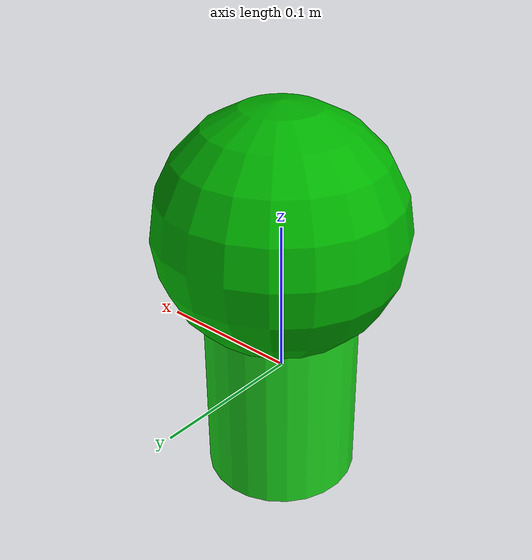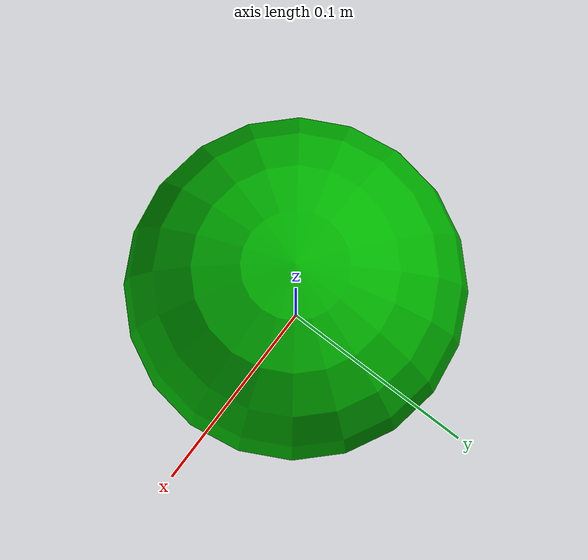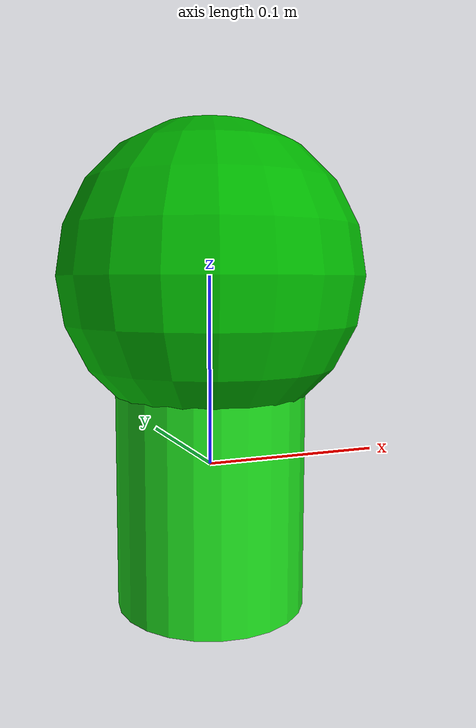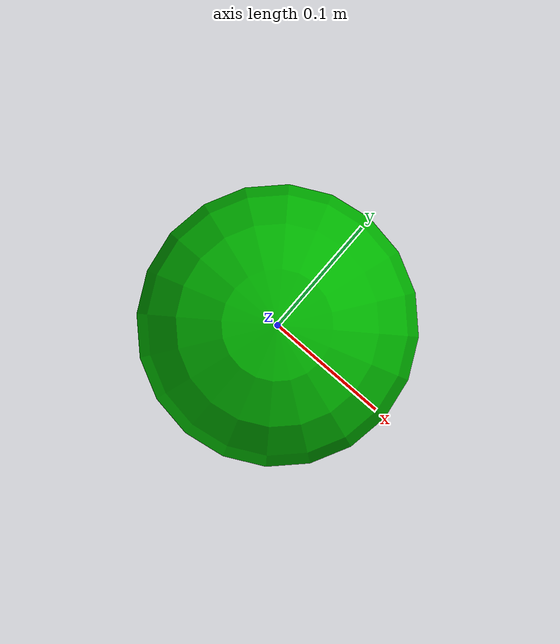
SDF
<?xml version="1.0"?>
<sdf version="1.6">
  <model name="weed">
    <static>true</static>
    <link name="link">
      <collision name="collision">
        <geometry>
          <cylinder>
            <radius>0.05</radius>
            <length>0.15</length>
          </cylinder>
        </geometry>
      </collision>
      <visual name="visual">
        <geometry>
          <cylinder>
            <radius>0.05</radius>
            <length>0.15</length>
          </cylinder>
        </geometry>
        <material>
          <ambient>0.1 0.6 0.1 1</ambient>
          <diffuse>0.1 0.8 0.1 1</diffuse>
          <specular>0.1 0.1 0.1 1</specular>
        </material>
      </visual>
      <!-- Top leaves -->
      <visual name="leaves">
        <pose>0 0 0.1 0 0 0</pose>
        <geometry>
          <sphere>
            <radius>0.08</radius>
          </sphere>
        </geometry>
        <material>
          <ambient>0.0 0.5 0.0 1</ambient>
          <diffuse>0.0 0.7 0.0 1</diffuse>
        </material>
      </visual>
    </link>
  </model>
</sdf>
